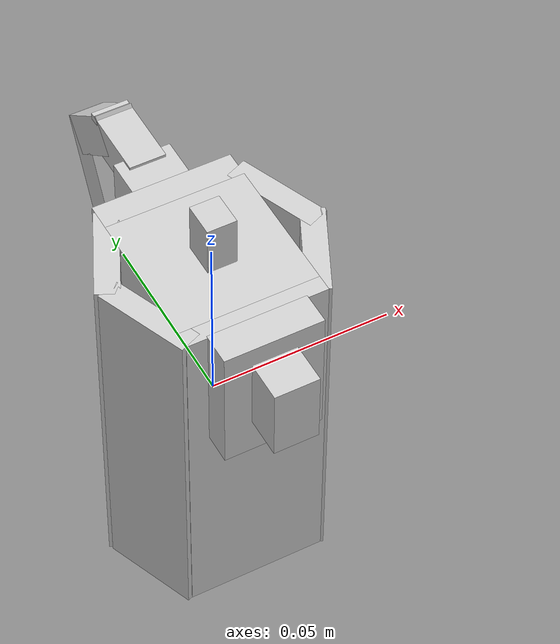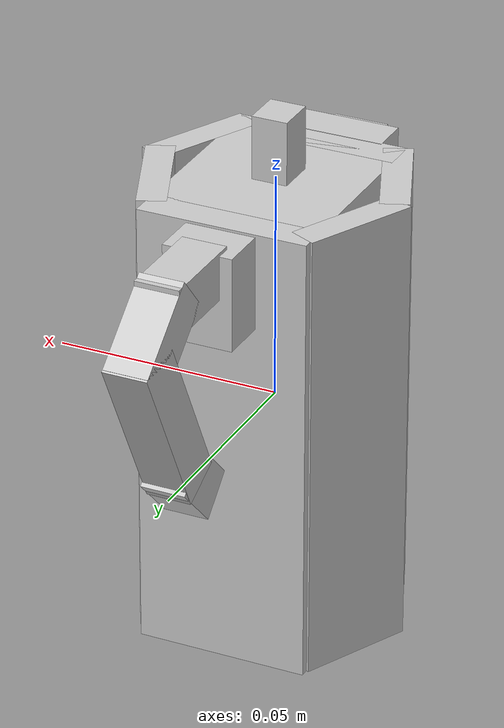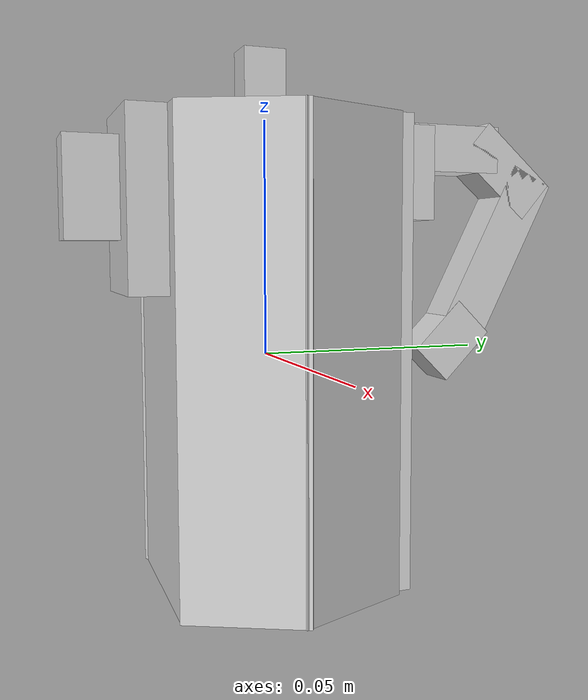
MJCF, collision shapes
<mujoco model="custom_moka_pot_small">
  <asset>
    <texture file="metal_diff.png" name="tex-moka_pot_body" type="2d"/>
    <material name="moka_pot_body" reflectance="0.5" texrepeat="1 1" texture="tex-moka_pot_body" texuniform="false"/>
    <mesh file="visual/moka_pot_body_vis.msh" name="moka_pot_body_vis" scale="0.01875 0.01875 0.01875"/>
    <texture file="rubber_black.png" name="tex-moka_pot_handle" type="2d"/>
    <material name="moka_pot_handle" reflectance="0.5" texrepeat="1 1" texture="tex-moka_pot_handle" texuniform="false"/>
    <mesh file="visual/moka_pot_handle_vis.msh" name="moka_pot_handle_vis" scale="0.01875 0.01875 0.01875"/>
  </asset>
  <worldbody>
    <body>
      <body name="object">
        <geom solimp="0.998 0.998 0.001" solref="0.001 1" density="100" friction="0.95 0.3 0.1" type="mesh" mesh="moka_pot_body_vis" conaffinity="0" contype="0" group="1" material="moka_pot_body"/>
        <geom solimp="0.998 0.998 0.001" solref="0.001 1" density="100" friction="0.95 0.3 0.1" type="mesh" mesh="moka_pot_handle_vis" conaffinity="0" contype="0" group="1" material="moka_pot_handle"/>
        <geom solimp="0.998 0.998 0.001" solref="0.001 1" density="100" friction="0.95 0.3 0.1" type="box" pos="-0.00000 -0.00000 0.00033" quat="0.00000 0.00000 0.00000 1.00000" size="0.01875 0.01875 0.04991" group="0" rgba="0.8 0.8 0.8 0.3"/>
        <geom solimp="0.998 0.998 0.001" solref="0.001 1" density="100" friction="0.95 0.3 0.1" type="box" pos="0.00000 -0.01946 0.00033" quat="0.00000 0.70711 0.70711 0.00000" size="0.00379 0.01875 0.04991" group="0" rgba="0.8 0.8 0.8 0.3"/>
        <geom solimp="0.998 0.998 0.001" solref="0.001 1" density="100" friction="0.95 0.3 0.1" type="box" pos="0.00000 0.02216 0.00033" quat="0.00000 0.70711 0.70711 0.00000" size="0.00379 0.01875 0.04991" group="0" rgba="0.8 0.8 0.8 0.3"/>
        <geom solimp="0.998 0.998 0.001" solref="0.001 1" density="100" friction="0.95 0.3 0.1" type="box" pos="0.02263 0.00941 0.00033" quat="0.00000 -0.19372 0.98106 0.00000" size="0.00315 0.01289 0.04991" group="0" rgba="0.8 0.8 0.8 0.3"/>
        <geom solimp="0.998 0.998 0.001" solref="0.001 1" density="100" friction="0.95 0.3 0.1" type="box" pos="-0.02201 -0.01052 0.00033" quat="-0.00000 -0.98106 -0.19372 -0.00000" size="0.00315 0.01289 0.04991" group="0" rgba="0.8 0.8 0.8 0.3"/>
        <geom solimp="0.998 0.998 0.001" solref="0.001 1" density="100" friction="0.95 0.3 0.1" type="box" pos="0.02221 -0.01052 0.00033" quat="0.00000 -0.97505 0.22201 0.00000" size="0.00315 0.01289 0.04991" group="0" rgba="0.8 0.8 0.8 0.3"/>
        <geom solimp="0.998 0.998 0.001" solref="0.001 1" density="100" friction="0.95 0.3 0.1" type="box" pos="-0.02201 0.01132 0.00033" quat="0.00000 -0.97505 0.22201 0.00000" size="0.00315 0.01289 0.04991" group="0" rgba="0.8 0.8 0.8 0.3"/>
        <geom solimp="0.998 0.998 0.001" solref="0.001 1" density="100" friction="0.95 0.3 0.1" type="box" pos="0.00000 -0.02693 0.03195" quat="0.00000 0.70711 0.70711 0.00000" size="0.00433 0.01322 0.01838" group="0" rgba="0.8 0.8 0.8 0.3"/>
        <geom solimp="0.998 0.998 0.001" solref="0.001 1" density="100" friction="0.95 0.3 0.1" type="box" pos="0.00000 -0.03682 0.03464" quat="0.00000 0.70711 0.70711 0.00000" size="0.00541 0.00601 0.01030" group="0" rgba="0.8 0.8 0.8 0.3"/>
        <geom solimp="0.998 0.998 0.001" solref="0.001 1" density="100" friction="0.95 0.3 0.1" type="box" pos="-0.00000 0.03119 0.03937" quat="0.00000 0.70711 0.70711 0.00000" size="0.00541 0.00766 0.01030" group="0" rgba="0.8 0.8 0.8 0.3"/>
        <geom solimp="0.998 0.998 0.001" solref="0.001 1" density="100" friction="0.95 0.3 0.1" type="box" pos="0.00000 0.04372 0.04520" quat="0.00000 -0.00000 0.70711 -0.70711" size="0.00491 0.00523 0.01057" group="0" rgba="0.8 0.8 0.8 0.3"/>
        <geom solimp="0.998 0.998 0.001" solref="0.001 1" density="100" friction="0.95 0.3 0.1" type="box" pos="-0.00000 0.05659 0.04043" quat="0.00000 0.00000 -0.90919 -0.41638" size="0.00491 0.00523 0.01057" group="0" rgba="0.8 0.8 0.8 0.3"/>
        <geom solimp="0.998 0.998 0.001" solref="0.001 1" density="100" friction="0.95 0.3 0.1" type="box" pos="-0.00000 0.05435 0.02118" quat="0.00000 -0.00000 -0.23224 -0.97266" size="0.00491 0.00532 0.02063" group="0" rgba="0.8 0.8 0.8 0.3"/>
        <geom solimp="0.998 0.998 0.001" solref="0.001 1" density="100" friction="0.95 0.3 0.1" type="box" pos="0.00010 0.04322 0.00172" quat="0.00000 -0.00000 0.92514 -0.37963" size="0.00491 0.00530 0.00755" group="0" rgba="0.8 0.8 0.8 0.3"/>
        <geom solimp="0.998 0.998 0.001" solref="0.001 1" density="100" friction="0.95 0.3 0.1" type="box" pos="-0.00000 -0.00101 0.05572" quat="0.00000 0.00000 1.00000 0.00000" size="0.00393 0.00449 0.00855" group="0" rgba="0.8 0.8 0.8 0.3"/>
      </body>
      <site rgba="0 0 0 0" size="0.00375" pos="0.00000 0.00000 -0.04500" name="bottom_site"/>
      <site rgba="0 0 0 0" size="0.00375" pos="0.00000 0.00000 0.03000" name="top_site"/>
      <site rgba="0 0 0 0" size="0.00375" pos="0.01875 0.01875 0.00000" name="horizontal_radius_site"/>
    </body>
  </worldbody>
</mujoco>
